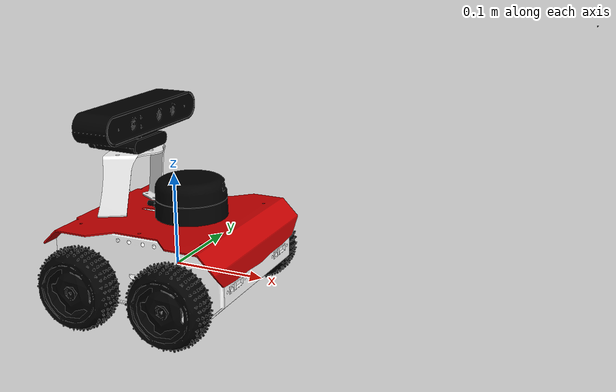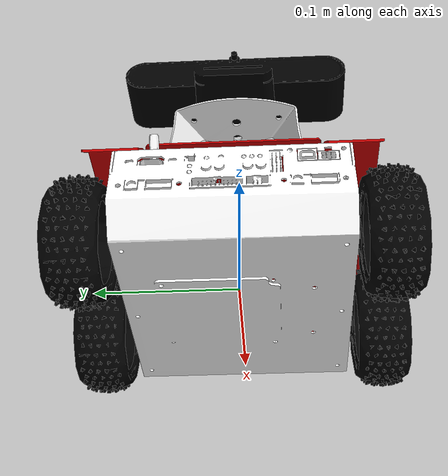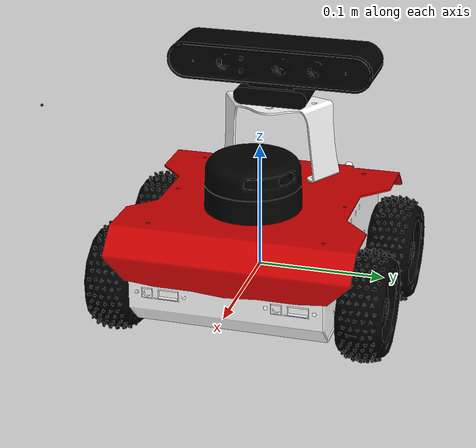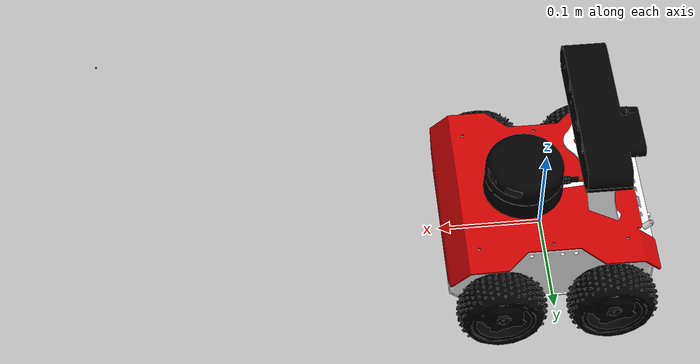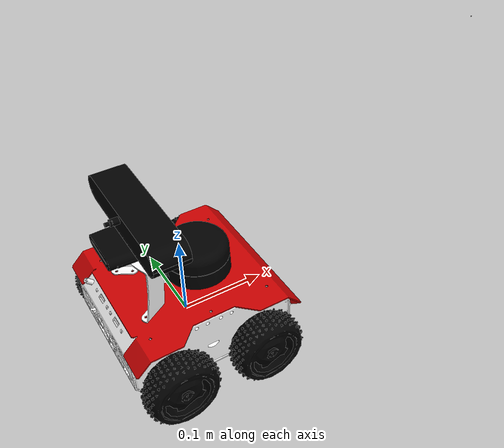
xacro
<?xml version='1.0'?>

<robot name="rosbot"
  xmlns:xacro="http://www.ros.org/wiki/xacro">

  <xacro:arg name="robot_namespace" default=""/>

  <xacro:property name="cameraSize" value="0.05"/>
  <xacro:property name="cameraMass" value="0.1"/>

  <xacro:include filename="$(find rosbot_description)/urdf/materials.xacro" />
  <xacro:include filename="$(find rosbot_description)/urdf/rosbot.gazebo" />

  <link name="base_link"></link>
  <joint name="base_link_joint" type="fixed">
    <origin xyz="0 0 0" rpy="0 0 0"/>
    <parent link="base_link"/>
    <child link="body_link"/>
  </joint>

  <link name='body_link'>
    <pose>0 0 0.1 0 0 0</pose>

    <inertial>
      <mass value="5"/>
      <origin xyz="0 0 0.04" rpy=" 0 0 0"/>
      <inertia
      ixx="0.01" ixy="0.01" ixz="0"
      iyy="0.01" iyz="0.01"
      izz="0.01"
      />
    </inertial>

    <collision>
      <origin xyz="0 0 0.02" rpy="0 0 0"/>
      <geometry>
        <box size="0.20 0.15 0.04"/>
      </geometry>
    </collision>

    <visual>
      <origin xyz="0 0 -0.02" rpy=" 1.5707 0 1.5707"/>
      <geometry>
        <mesh filename="package://rosbot_description/meshes/box.stl" scale="0.001 0.001 0.001" />
      </geometry>
      <material name="White"/>
    </visual>

  </link>

  <joint name="top_joint" type="fixed">
    <axis xyz="0 1 0" />
    <origin xyz="0 0 0" rpy="0 0 0"/>
    <parent link="body_link"/>
    <child link="top"/>
  </joint>

  <link name='top'>
    <pose>0 0 0 0 0 0</pose>

    <inertial>
      <mass value="0.01"/>
      <origin xyz="0 0 0.055" rpy=" 0 0 0"/>
      <inertia
      ixx="0.0" ixy="0" ixz="0"
      iyy="0.0" iyz="0"
      izz="0.0"
      />
    </inertial>
    <visual>
      <origin xyz="0 0 0.055" rpy=" 1.5707 0 1.5707"/>
      <geometry>
        <mesh filename="package://rosbot_description/meshes/upper.dae" scale="0.001 0.001 0.001" />
      </geometry>
      <material name="Red"/>
    </visual>
  </link>

  <link name="front_left_wheel">
    <collision>
      <origin xyz="0 -0.014 0" rpy="${pi/2} 0 0"/>
      <geometry>
        <cylinder length="0.036" radius="0.04"/>
      </geometry>
      <surface>
        <friction>
          <ode>
            <mu>10</mu>
            <mu2>10</mu2>
          </ode>
        </friction>
      </surface>
    </collision>
    <visual>
      <origin xyz="0 0 0" rpy="0 0 1.5707"/>
      <geometry>
        <mesh filename="package://rosbot_description/meshes/wheel.dae" scale="0.001 0.001 0.001" />
      </geometry>
      <material name="Black"/>
    </visual>
    <inertial>
      <origin xyz="0 0 0" rpy="0 1.5707 1.5707"/>
      <mass value="0.5"/>
      <inertia
      ixx="0.001" ixy="0.0" ixz="0.0"
      iyy="0.001" iyz="0.0"
      izz="0.001"/>
    </inertial>
  </link>

  <link name="front_right_wheel">
    <collision>
      <origin xyz="0 0.014 0" rpy="${pi/2} 0 0"/>
      <geometry>
        <cylinder length="0.036" radius="0.04"/>
      </geometry>
      <surface>
        <friction>
          <ode>
            <mu>10</mu>
            <mu2>10</mu2>
          </ode>
        </friction>
      </surface>
    </collision>
    <visual>
      <origin xyz="0 0 0" rpy="0 0 -1.5707"/>
      <geometry>
        <mesh filename="package://rosbot_description/meshes/wheel.dae" scale="0.001 0.001 0.001" />
      </geometry>
      <material name="Black"/>
    </visual>
    <inertial>
      <origin xyz="0 0 0" rpy="0 1.5707 1.5707"/>
      <mass value="0.5"/>
      <inertia
      ixx="0.001" ixy="0.0" ixz="0.0"
      iyy="0.001" iyz="0.0"
      izz="0.001"/>
    </inertial>
  </link>

  <link name="rear_left_wheel">
    <collision>
      <origin xyz="0 -0.014 0" rpy="${pi/2} 0 0"/>
      <geometry>
        <cylinder length="0.036" radius="0.04"/>
      </geometry>
      <surface>
        <friction>
          <ode>
            <mu>10</mu>
            <mu2>10</mu2>
          </ode>
        </friction>
      </surface>
    </collision>
    <visual>
      <origin xyz="0 0 0" rpy="0 0 1.5707"/>
      <geometry>
        <mesh filename="package://rosbot_description/meshes/wheel.dae" scale="0.001 0.001 0.001" />
      </geometry>
      <material name="Black"/>
    </visual>
    <inertial>
      <origin xyz="0 0 0" rpy="0 1.5707 1.5707"/>
      <mass value="0.5"/>
      <inertia
      ixx="0.001" ixy="0.0" ixz="0.0"
      iyy="0.001" iyz="0.0"
      izz="0.001"/>
    </inertial>
  </link>

  <link name="rear_right_wheel">
    <collision>
      <origin xyz="0 0.014 0" rpy="${pi/2} 0 0"/>
      <geometry>
        <cylinder length="0.036" radius="0.04"/>
      </geometry>
      <surface>
        <friction>
          <ode>
            <mu>10</mu>
            <mu2>10</mu2>
          </ode>
        </friction>
      </surface>
    </collision>
    <visual>
      <origin xyz="0 0 0" rpy="0 0 -1.5707"/>
      <geometry>
        <mesh filename="package://rosbot_description/meshes/wheel.dae" scale="0.001 0.001 0.001" />
      </geometry>
      <material name="Black"/>
    </visual>
    <inertial>
      <origin xyz="0 0 0" rpy="0 1.5707 1.5707"/>
      <mass value="0.5"/>
      <inertia
      ixx="0.001" ixy="0.0" ixz="0.0"
      iyy="0.001" iyz="0.0"
      izz="0.001"/>
    </inertial>
  </link>

  <joint type="continuous" name="front_left_wheel_hinge">
    <origin xyz="0.05 0.11 0" rpy="0 0 0"/>
    <child link="front_left_wheel"/>
    <parent link="body_link"/>
    <axis xyz="0 1 0" rpy="0 0 0"/>
    <limit effort="1" velocity="10"/>
    <joint_properties damping="5.0" friction="1.0"/>
  </joint>

  <transmission name="front_left_wheel_trans" type="SimpleTransmission">
    <type>transmission_interface/SimpleTransmission</type>
    <actuator name="front_left_wheel_motor">
      <mechanicalReduction>1</mechanicalReduction>
    </actuator>
    <joint name="front_left_wheel_hinge">
      <hardwareInterface>hardware_interface/EffortJointInterface</hardwareInterface>
    </joint>
  </transmission>

  <joint type="continuous" name="front_right_wheel_hinge">
    <origin xyz="0.05 -0.11 0" rpy="0 0 0"/>
    <child link="front_right_wheel"/>
    <parent link="body_link"/>
    <axis xyz="0 1 0" rpy="0 0 0"/>
    <limit effort="1" velocity="10"/>
    <joint_properties damping="5.0" friction="1.0"/>
  </joint>

  <transmission name="front_right_wheel_trans" type="SimpleTransmission">
    <type>transmission_interface/SimpleTransmission</type>
    <actuator name="front_right_wheel_motor">
      <mechanicalReduction>1</mechanicalReduction>
    </actuator>
    <joint name="front_right_wheel_hinge">
      <hardwareInterface>hardware_interface/EffortJointInterface</hardwareInterface>
    </joint>
  </transmission>

  <joint type="continuous" name="rear_left_wheel_hinge">
    <origin xyz="-0.055 0.11 0" rpy="0 0 0"/>
    <child link="rear_left_wheel"/>
    <parent link="body_link"/>
    <axis xyz="0 1 0" rpy="0 0 0"/>
    <limit effort="1" velocity="10"/>
    <joint_properties damping="5.0" friction="1.0"/>
  </joint>

  <transmission name="rear_left_wheel_trans" type="SimpleTransmission">
    <type>transmission_interface/SimpleTransmission</type>
    <actuator name="rear_left_wheel_motor">
      <mechanicalReduction>1</mechanicalReduction>
    </actuator>
    <joint name="rear_left_wheel_hinge">
      <hardwareInterface>hardware_interface/EffortJointInterface</hardwareInterface>
    </joint>
  </transmission>

  <joint type="continuous" name="rear_right_wheel_hinge">
    <origin xyz="-0.055 -0.11 0" rpy="0 0 0"/>
    <child link="rear_right_wheel"/>
    <parent link="body_link"/>
    <axis xyz="0 1 0" rpy="0 0 0"/>
    <limit effort="1" velocity="10"/>
    <joint_properties damping="5.0" friction="1.0"/>
  </joint>

  <transmission name="rear_right_wheel_trans" type="SimpleTransmission">
    <type>transmission_interface/SimpleTransmission</type>
    <actuator name="rear_right_wheel_motor">
      <mechanicalReduction>1</mechanicalReduction>
    </actuator>
    <joint name="rear_right_wheel_hinge">
      <hardwareInterface>hardware_interface/EffortJointInterface</hardwareInterface>
    </joint>
  </transmission>

  <!-- Orbbec Astra RGBD Camera -->
  <joint name="astra_joint" type="fixed">
    <axis xyz="0 0 0" />
    <origin xyz="-0.03 0 0.18" rpy="0 0 0"/> <!-- -0.03 0 0.18 rpy 0 0 0 -->
    <parent link="body_link"/>
    <child link="camera_link"/>
  </joint>

  <link name="camera_link">
    <collision>
      <origin xyz="0.02 0 0" rpy="0 0 0"/>  <!-- 0.02 0 0 rpy 0 0 0 -->
      <geometry>
        <box size="0.001 0.001 0.001"/>
      </geometry>
    </collision>

    <visual>
      <origin xyz="-0.01 0 -0.03" rpy="1.5707 0 1.5707"/>
      <geometry>
        <mesh filename="package://rosbot_description/meshes/astra.dae" scale="0.001 0.001 0.001" />
      </geometry>
      <material name="Black"/>
    </visual>

    <inertial>
      <mass value="1e-5" />
      <origin xyz="0 0 0" rpy="0 0 0"/>
      <inertia ixx="0" ixy="0" ixz="0" iyy="0" iyz="0" izz="0" />
    </inertial>

  </link>

  <joint name="camera_optical_joint" type="fixed">
    <origin xyz="0 0 0" rpy="${-pi/2} 0 ${-pi/2}"/>
    <parent link="camera_link"/>
    <child link="camera_rgb_frame"/>
  </joint>

  <link name="camera_rgb_frame">
  </link>

  <joint name="camera_depth_joint" type="fixed">
    <origin xyz="0 0 0" rpy="${-pi/2} 0 ${-pi/2}"/>
    <parent link="camera_link"/>
    <child link="camera_depth_frame"/>
  </joint>

  <link name="camera_depth_frame">
  </link>

  <joint name="rplidar_joint" type="fixed">
    <axis xyz="0 1 0" />
    <origin xyz="0.02 0 0.058" rpy="0 0 3.14"/>
    <parent link="body_link"/>
    <child link="laser"/>
  </joint>

  <!-- rplidar Laser -->
  <link name="laser">
    <collision>
      <origin xyz="0 0 0" rpy="1.5707 0 4.71"/>
      <geometry>
        <mesh filename="package://rosbot_description/meshes/rplidar.dae" scale="0.001 0.001 0.001" />
      </geometry>
    </collision>

    <visual>
      <origin xyz="0 0 0" rpy="1.5707 0 4.71"/>
      <geometry>
        <mesh filename="package://rosbot_description/meshes/rplidar.dae" scale="0.001 0.001 0.001" />
      </geometry>
      <material name="Black"/>
    </visual>

    <inertial>
      <mass value="1e-5" />
      <origin xyz="0 0 0" rpy="1.5707 0 4.71"/>
      <inertia ixx="0" ixy="0" ixz="0" iyy="0" iyz="0" izz="0" />
    </inertial>

  </link>

  <joint name="range_fl_joint" type="fixed">
    <axis xyz="0 1 0" />
    <origin xyz="0.1 0.05 0.01" rpy="0 0 0.13 "/>
    <parent link="body_link"/>
    <child link="range_fl"/>
  </joint>
  <link name="range_fl"></link>

  <joint name="range_fr_joint" type="fixed">
    <axis xyz="0 1 0" />
    <origin xyz="0.1 -0.05 0.01" rpy="0 0 -0.13 "/>
    <parent link="body_link"/>
    <child link="range_fr"/>
  </joint>
  <link name="range_fr"></link>

  <joint name="range_rl_joint" type="fixed">
    <axis xyz="0 1 0" />
    <origin xyz="-0.1 0.05 0.01" rpy="0 0 3.01 "/>
    <parent link="body_link"/>
    <child link="range_rl"/>
  </joint>
  <link name="range_rl"></link>

  <joint name="range_rr_joint" type="fixed">
    <axis xyz="0 1 0" />
    <origin xyz="-0.1 -0.05 0.01" rpy="0 0 3.27 "/>
    <parent link="body_link"/>
    <child link="range_rr"/>
  </joint>
  <link name="range_rr"></link>

  <!-- projector link...................................... -->
  <joint name="projector_joint" type="fixed">
    <axis xyz="0 0 0" />
    <origin xyz="0.4 0 0.3" rpy="0 -0.2 0"/>
    <parent link="body_link"/>
    <child link="projector_link"/>
  </joint>

  <link name="projector_link">
    <collision>
      <origin xyz="0.02 0 0" rpy="0 0 0"/>
      <geometry>
        <box size="0.001 0.001 0.001"/>
      </geometry>
    </collision>

    <visual>
      <origin xyz="-0.01 0 -0.03" rpy="1.5707 0 1.5707"/>
      <geometry>
              <box size="0.001 0.001 0.001"/>
      </geometry>
      <material name="Black"/>
    </visual>

    <inertial>
      <mass value="1e-5" />
      <origin xyz="0 0 0" rpy="0 0 0"/>
      <inertia ixx="0" ixy="0" ixz="0" iyy="0" iyz="0" izz="0" />
    </inertial>

  </link>

 <!-- extra camera links to get 3 camera's for the kademuur in meshroom test -->

    <!-- camera 1 link -->

</robot>

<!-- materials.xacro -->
<robot name="xacro_properties" xmlns:xacro="http://ros.org/wiki/xacro">

  <material name="Black">
      <color rgba="0.0 0.0 0.0 1.0"/>
  </material>

  <material name="Blue">
    <color rgba="0.0 0.0 0.8 1.0"/>
  </material>

  <material name="Green">
    <color rgba="0.0 0.8 0.0 1.0"/>
  </material>

  <material name="Grey">
    <color rgba="0.5 0.5 0.5 1.0"/>
  </material>

  <material name="DarkGrey">
    <color rgba="0.2 0.2 0.2 1.0"/>
  </material>

  <material name="Orange">
    <color rgba="${255/255} ${108/255} ${10/255} 1.0"/>
  </material>

  <material name="Brown">
    <color rgba="${222/255} ${207/255} ${195/255} 1.0"/>
  </material>

  <material name="Red">
    <color rgba="0.8 0.0 0.0 1.0"/>
  </material>

  <material name="White">
    <color rgba="1.0 1.0 1.0 1.0"/>
  </material>
</robot>
